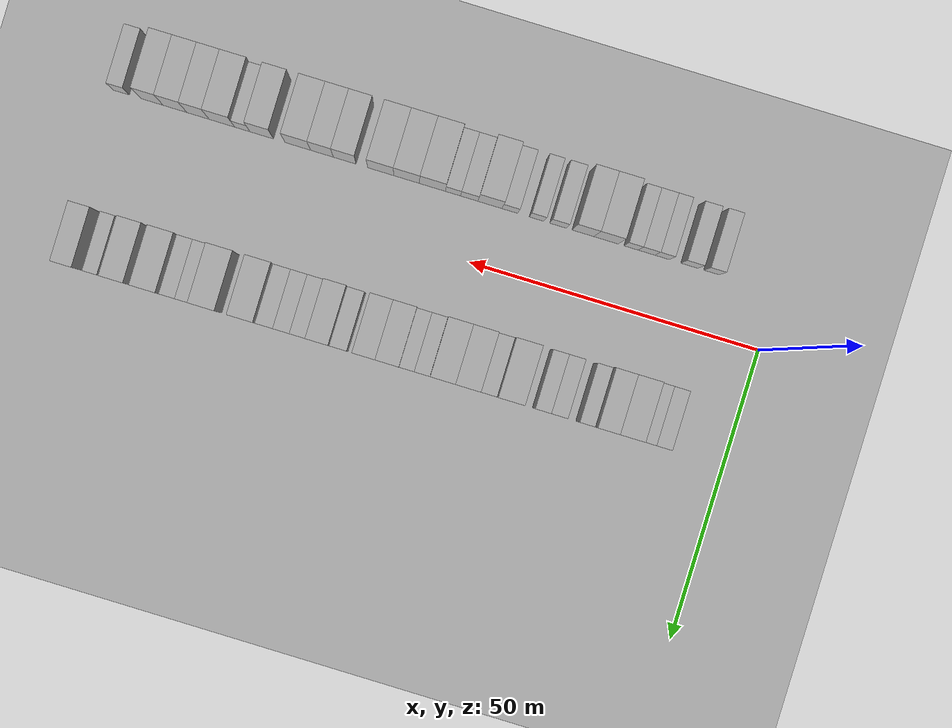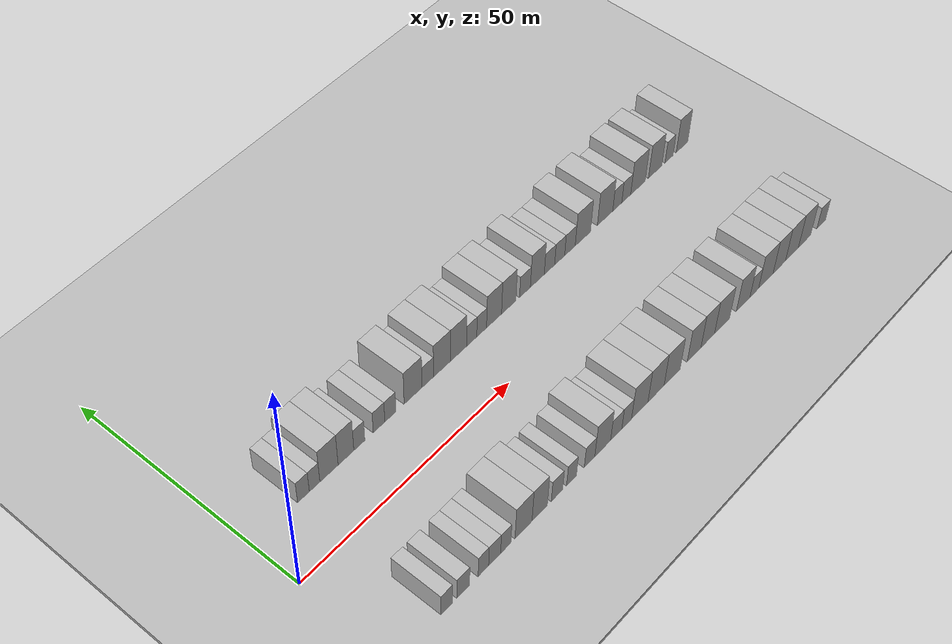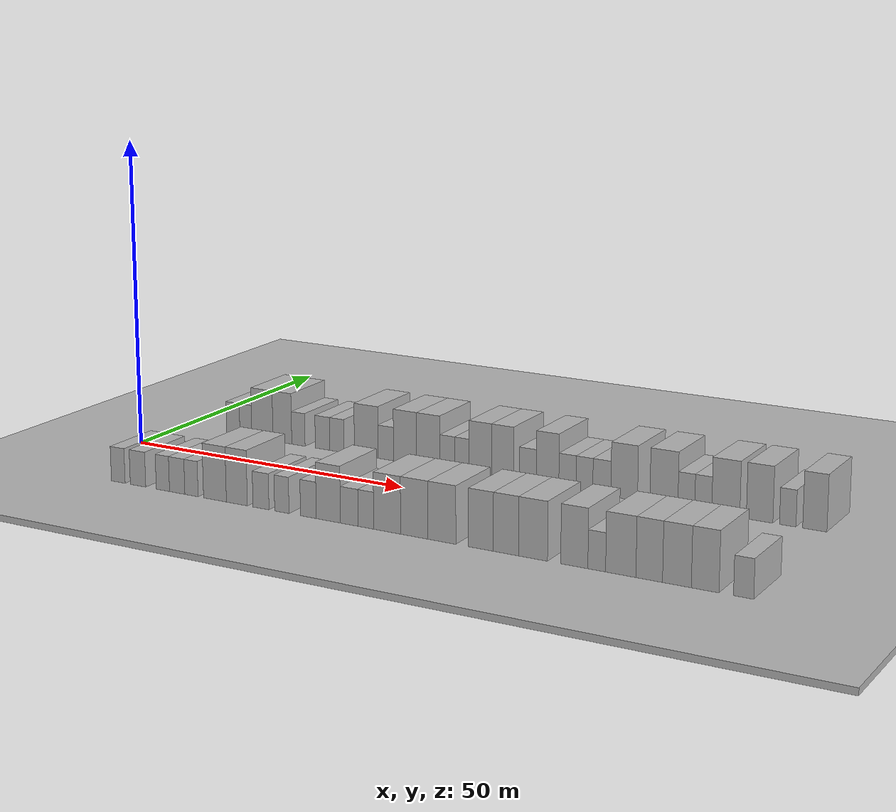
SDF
<sdf version="1.6">
 <world name="default">
  <include><name>ground_plane_1</name><uri>model://HANNAS_ground_plane</uri></include>
  <include>
   <name>ground_plane_2</name>
   <uri>model://HANNAS_ground_plane</uri>
   <pose>100 0 0  0 0 0</pose>
  </include>
  <model name="building_1">
   <static>1</static>
   <pose>11.3372 15.0000 0 0.000000 0.000000 1.570796</pose>
   <link name="link">
    <pose>0 0 3.00 0 0 0</pose>
    <collision name="collision"><geometry><box><size>10.0000 2.6744 6.0000</size></box></geometry></collision>
    <visual name="visual">
     <cast_shadows>0</cast_shadows>
     <geometry><box><size>10.0000 2.6744 6.0000</size></box></geometry>
     <material>
      <script>
       <uri>model://HANNAS_wall/materials/scripts</uri>
       <uri>model://HANNAS_wall/materials/textures</uri>
       <name>vrc/HANNAS_wall</name>
      </script>
     </material>
    </visual>
   </link>
  </model>
  <model name="building_2">
   <static>1</static>
   <pose>13.8785 15.0000 0 0.000000 0.000000 1.570796</pose>
   <link name="link">
    <pose>0 0 3.00 0 0 0</pose>
    <collision name="collision"><geometry><box><size>10.0000 2.4080 6.0000</size></box></geometry></collision>
    <visual name="visual">
     <cast_shadows>0</cast_shadows>
     <geometry><box><size>10.0000 2.4080 6.0000</size></box></geometry>
     <material>
      <script>
       <uri>model://HANNAS_wall/materials/scripts</uri>
       <uri>model://HANNAS_wall/materials/textures</uri>
       <name>vrc/HANNAS_wall</name>
      </script>
     </material>
    </visual>
   </link>
  </model>
  <model name="building_3">
   <static>1</static>
   <pose>17.1930 15.0000 0 0.000000 0.000000 1.570796</pose>
   <link name="link">
    <pose>0 0 4.50 0 0 0</pose>
    <collision name="collision"><geometry><box><size>10.0000 4.2211 9.0000</size></box></geometry></collision>
    <visual name="visual">
     <cast_shadows>0</cast_shadows>
     <geometry><box><size>10.0000 4.2211 9.0000</size></box></geometry>
     <material>
      <script>
       <uri>model://HANNAS_wall/materials/scripts</uri>
       <uri>model://HANNAS_wall/materials/textures</uri>
       <name>vrc/HANNAS_wall</name>
      </script>
     </material>
    </visual>
   </link>
  </model>
  <model name="building_4">
   <static>1</static>
   <pose>21.1514 15.0000 0 0.000000 0.000000 1.570796</pose>
   <link name="link">
    <pose>0 0 4.50 0 0 0</pose>
    <collision name="collision"><geometry><box><size>10.0000 3.6958 9.0000</size></box></geometry></collision>
    <visual name="visual">
     <cast_shadows>0</cast_shadows>
     <geometry><box><size>10.0000 3.6958 9.0000</size></box></geometry>
     <material>
      <script>
       <uri>model://HANNAS_wall/materials/scripts</uri>
       <uri>model://HANNAS_wall/materials/textures</uri>
       <name>vrc/HANNAS_wall</name>
      </script>
     </material>
    </visual>
   </link>
  </model>
  <model name="building_5">
   <static>1</static>
   <pose>24.2985 15.0000 0 0.000000 0.000000 1.570796</pose>
   <link name="link">
    <pose>0 0 3.00 0 0 0</pose>
    <collision name="collision"><geometry><box><size>10.0000 2.5983 6.0000</size></box></geometry></collision>
    <visual name="visual">
     <cast_shadows>0</cast_shadows>
     <geometry><box><size>10.0000 2.5983 6.0000</size></box></geometry>
     <material>
      <script>
       <uri>model://HANNAS_wall/materials/scripts</uri>
       <uri>model://HANNAS_wall/materials/textures</uri>
       <name>vrc/HANNAS_wall</name>
      </script>
     </material>
    </visual>
   </link>
  </model>
  <model name="building_6">
   <static>1</static>
   <pose>28.9933 15.0000 0 0.000000 0.000000 1.570796</pose>
   <link name="link">
    <pose>0 0 3.00 0 0 0</pose>
    <collision name="collision"><geometry><box><size>10.0000 2.7913 6.0000</size></box></geometry></collision>
    <visual name="visual">
     <cast_shadows>0</cast_shadows>
     <geometry><box><size>10.0000 2.7913 6.0000</size></box></geometry>
     <material>
      <script>
       <uri>model://HANNAS_wall/materials/scripts</uri>
       <uri>model://HANNAS_wall/materials/textures</uri>
       <name>vrc/HANNAS_wall</name>
      </script>
     </material>
    </visual>
   </link>
  </model>
  <model name="building_7">
   <static>1</static>
   <pose>31.7404 15.0000 0 0.000000 0.000000 1.570796</pose>
   <link name="link">
    <pose>0 0 3.00 0 0 0</pose>
    <collision name="collision"><geometry><box><size>10.0000 2.7030 6.0000</size></box></geometry></collision>
    <visual name="visual">
     <cast_shadows>0</cast_shadows>
     <geometry><box><size>10.0000 2.7030 6.0000</size></box></geometry>
     <material>
      <script>
       <uri>model://HANNAS_wall/materials/scripts</uri>
       <uri>model://HANNAS_wall/materials/textures</uri>
       <name>vrc/HANNAS_wall</name>
      </script>
     </material>
    </visual>
   </link>
  </model>
  <model name="building_8">
   <static>1</static>
   <pose>37.3140 15.0000 0 0.000000 0.000000 1.570796</pose>
   <link name="link">
    <pose>0 0 4.50 0 0 0</pose>
    <collision name="collision"><geometry><box><size>10.0000 4.4440 9.0000</size></box></geometry></collision>
    <visual name="visual">
     <cast_shadows>0</cast_shadows>
     <geometry><box><size>10.0000 4.4440 9.0000</size></box></geometry>
     <material>
      <script>
       <uri>model://HANNAS_wall/materials/scripts</uri>
       <uri>model://HANNAS_wall/materials/textures</uri>
       <name>vrc/HANNAS_wall</name>
      </script>
     </material>
    </visual>
   </link>
  </model>
  <model name="building_9">
   <static>1</static>
   <pose>40.9731 15.0000 0 0.000000 0.000000 1.570796</pose>
   <link name="link">
    <pose>0 0 3.00 0 0 0</pose>
    <collision name="collision"><geometry><box><size>10.0000 2.8742 6.0000</size></box></geometry></collision>
    <visual name="visual">
     <cast_shadows>0</cast_shadows>
     <geometry><box><size>10.0000 2.8742 6.0000</size></box></geometry>
     <material>
      <script>
       <uri>model://HANNAS_wall/materials/scripts</uri>
       <uri>model://HANNAS_wall/materials/textures</uri>
       <name>vrc/HANNAS_wall</name>
      </script>
     </material>
    </visual>
   </link>
  </model>
  <model name="building_10">
   <static>1</static>
   <pose>44.5333 15.0000 0 0.000000 0.000000 1.570796</pose>
   <link name="link">
    <pose>0 0 4.50 0 0 0</pose>
    <collision name="collision"><geometry><box><size>10.0000 4.2464 9.0000</size></box></geometry></collision>
    <visual name="visual">
     <cast_shadows>0</cast_shadows>
     <geometry><box><size>10.0000 4.2464 9.0000</size></box></geometry>
     <material>
      <script>
       <uri>model://HANNAS_wall/materials/scripts</uri>
       <uri>model://HANNAS_wall/materials/textures</uri>
       <name>vrc/HANNAS_wall</name>
      </script>
     </material>
    </visual>
   </link>
  </model>
  <model name="building_11">
   <static>1</static>
   <pose>48.7557 15.0000 0 0.000000 0.000000 1.570796</pose>
   <link name="link">
    <pose>0 0 4.50 0 0 0</pose>
    <collision name="collision"><geometry><box><size>10.0000 4.1984 9.0000</size></box></geometry></collision>
    <visual name="visual">
     <cast_shadows>0</cast_shadows>
     <geometry><box><size>10.0000 4.1984 9.0000</size></box></geometry>
     <material>
      <script>
       <uri>model://HANNAS_wall/materials/scripts</uri>
       <uri>model://HANNAS_wall/materials/textures</uri>
       <name>vrc/HANNAS_wall</name>
      </script>
     </material>
    </visual>
   </link>
  </model>
  <model name="building_12">
   <static>1</static>
   <pose>52.1893 15.0000 0 0.000000 0.000000 1.570796</pose>
   <link name="link">
    <pose>0 0 3.00 0 0 0</pose>
    <collision name="collision"><geometry><box><size>10.0000 2.6688 6.0000</size></box></geometry></collision>
    <visual name="visual">
     <cast_shadows>0</cast_shadows>
     <geometry><box><size>10.0000 2.6688 6.0000</size></box></geometry>
     <material>
      <script>
       <uri>model://HANNAS_wall/materials/scripts</uri>
       <uri>model://HANNAS_wall/materials/textures</uri>
       <name>vrc/HANNAS_wall</name>
      </script>
     </material>
    </visual>
   </link>
  </model>
  <model name="building_13">
   <static>1</static>
   <pose>54.8003 15.0000 0 0.000000 0.000000 1.570796</pose>
   <link name="link">
    <pose>0 0 3.00 0 0 0</pose>
    <collision name="collision"><geometry><box><size>10.0000 2.5532 6.0000</size></box></geometry></collision>
    <visual name="visual">
     <cast_shadows>0</cast_shadows>
     <geometry><box><size>10.0000 2.5532 6.0000</size></box></geometry>
     <material>
      <script>
       <uri>model://HANNAS_wall/materials/scripts</uri>
       <uri>model://HANNAS_wall/materials/textures</uri>
       <name>vrc/HANNAS_wall</name>
      </script>
     </material>
    </visual>
   </link>
  </model>
  <model name="building_14">
   <static>1</static>
   <pose>58.0679 15.0000 0 0.000000 0.000000 1.570796</pose>
   <link name="link">
    <pose>0 0 4.50 0 0 0</pose>
    <collision name="collision"><geometry><box><size>10.0000 3.9819 9.0000</size></box></geometry></collision>
    <visual name="visual">
     <cast_shadows>0</cast_shadows>
     <geometry><box><size>10.0000 3.9819 9.0000</size></box></geometry>
     <material>
      <script>
       <uri>model://HANNAS_wall/materials/scripts</uri>
       <uri>model://HANNAS_wall/materials/textures</uri>
       <name>vrc/HANNAS_wall</name>
      </script>
     </material>
    </visual>
   </link>
  </model>
  <model name="building_15">
   <static>1</static>
   <pose>61.9804 15.0000 0 0.000000 0.000000 1.570796</pose>
   <link name="link">
    <pose>0 0 4.50 0 0 0</pose>
    <collision name="collision"><geometry><box><size>10.0000 3.8432 9.0000</size></box></geometry></collision>
    <visual name="visual">
     <cast_shadows>0</cast_shadows>
     <geometry><box><size>10.0000 3.8432 9.0000</size></box></geometry>
     <material>
      <script>
       <uri>model://HANNAS_wall/materials/scripts</uri>
       <uri>model://HANNAS_wall/materials/textures</uri>
       <name>vrc/HANNAS_wall</name>
      </script>
     </material>
    </visual>
   </link>
  </model>
  <model name="building_16">
   <static>1</static>
   <pose>66.3748 15.0000 0 0.000000 0.000000 1.570796</pose>
   <link name="link">
    <pose>0 0 3.00 0 0 0</pose>
    <collision name="collision"><geometry><box><size>10.0000 2.9455 6.0000</size></box></geometry></collision>
    <visual name="visual">
     <cast_shadows>0</cast_shadows>
     <geometry><box><size>10.0000 2.9455 6.0000</size></box></geometry>
     <material>
      <script>
       <uri>model://HANNAS_wall/materials/scripts</uri>
       <uri>model://HANNAS_wall/materials/textures</uri>
       <name>vrc/HANNAS_wall</name>
      </script>
     </material>
    </visual>
   </link>
  </model>
  <model name="building_17">
   <static>1</static>
   <pose>69.7596 15.0000 0 0.000000 0.000000 1.570796</pose>
   <link name="link">
    <pose>0 0 4.50 0 0 0</pose>
    <collision name="collision"><geometry><box><size>10.0000 3.8243 9.0000</size></box></geometry></collision>
    <visual name="visual">
     <cast_shadows>0</cast_shadows>
     <geometry><box><size>10.0000 3.8243 9.0000</size></box></geometry>
     <material>
      <script>
       <uri>model://HANNAS_wall/materials/scripts</uri>
       <uri>model://HANNAS_wall/materials/textures</uri>
       <name>vrc/HANNAS_wall</name>
      </script>
     </material>
    </visual>
   </link>
  </model>
  <model name="building_18">
   <static>1</static>
   <pose>73.1181 15.0000 0 0.000000 0.000000 1.570796</pose>
   <link name="link">
    <pose>0 0 3.00 0 0 0</pose>
    <collision name="collision"><geometry><box><size>10.0000 2.8927 6.0000</size></box></geometry></collision>
    <visual name="visual">
     <cast_shadows>0</cast_shadows>
     <geometry><box><size>10.0000 2.8927 6.0000</size></box></geometry>
     <material>
      <script>
       <uri>model://HANNAS_wall/materials/scripts</uri>
       <uri>model://HANNAS_wall/materials/textures</uri>
       <name>vrc/HANNAS_wall</name>
      </script>
     </material>
    </visual>
   </link>
  </model>
  <model name="building_19">
   <static>1</static>
   <pose>75.9669 15.0000 0 0.000000 0.000000 1.570796</pose>
   <link name="link">
    <pose>0 0 3.00 0 0 0</pose>
    <collision name="collision"><geometry><box><size>10.0000 2.8049 6.0000</size></box></geometry></collision>
    <visual name="visual">
     <cast_shadows>0</cast_shadows>
     <geometry><box><size>10.0000 2.8049 6.0000</size></box></geometry>
     <material>
      <script>
       <uri>model://HANNAS_wall/materials/scripts</uri>
       <uri>model://HANNAS_wall/materials/textures</uri>
       <name>vrc/HANNAS_wall</name>
      </script>
     </material>
    </visual>
   </link>
  </model>
  <model name="building_20">
   <static>1</static>
   <pose>78.8637 15.0000 0 0.000000 0.000000 1.570796</pose>
   <link name="link">
    <pose>0 0 3.00 0 0 0</pose>
    <collision name="collision"><geometry><box><size>10.0000 2.9887 6.0000</size></box></geometry></collision>
    <visual name="visual">
     <cast_shadows>0</cast_shadows>
     <geometry><box><size>10.0000 2.9887 6.0000</size></box></geometry>
     <material>
      <script>
       <uri>model://HANNAS_wall/materials/scripts</uri>
       <uri>model://HANNAS_wall/materials/textures</uri>
       <name>vrc/HANNAS_wall</name>
      </script>
     </material>
    </visual>
   </link>
  </model>
  <model name="building_21">
   <static>1</static>
   <pose>82.5431 15.0000 0 0.000000 0.000000 1.570796</pose>
   <link name="link">
    <pose>0 0 4.50 0 0 0</pose>
    <collision name="collision"><geometry><box><size>10.0000 4.3702 9.0000</size></box></geometry></collision>
    <visual name="visual">
     <cast_shadows>0</cast_shadows>
     <geometry><box><size>10.0000 4.3702 9.0000</size></box></geometry>
     <material>
      <script>
       <uri>model://HANNAS_wall/materials/scripts</uri>
       <uri>model://HANNAS_wall/materials/textures</uri>
       <name>vrc/HANNAS_wall</name>
      </script>
     </material>
    </visual>
   </link>
  </model>
  <model name="building_22">
   <static>1</static>
   <pose>88.9695 15.0000 0 0.000000 0.000000 1.570796</pose>
   <link name="link">
    <pose>0 0 4.50 0 0 0</pose>
    <collision name="collision"><geometry><box><size>10.0000 4.4826 9.0000</size></box></geometry></collision>
    <visual name="visual">
     <cast_shadows>0</cast_shadows>
     <geometry><box><size>10.0000 4.4826 9.0000</size></box></geometry>
     <material>
      <script>
       <uri>model://HANNAS_wall/materials/scripts</uri>
       <uri>model://HANNAS_wall/materials/textures</uri>
       <name>vrc/HANNAS_wall</name>
      </script>
     </material>
    </visual>
   </link>
  </model>
  <model name="building_23">
   <static>1</static>
   <pose>92.5445 15.0000 0 0.000000 0.000000 1.570796</pose>
   <link name="link">
    <pose>0 0 3.00 0 0 0</pose>
    <collision name="collision"><geometry><box><size>10.0000 2.6674 6.0000</size></box></geometry></collision>
    <visual name="visual">
     <cast_shadows>0</cast_shadows>
     <geometry><box><size>10.0000 2.6674 6.0000</size></box></geometry>
     <material>
      <script>
       <uri>model://HANNAS_wall/materials/scripts</uri>
       <uri>model://HANNAS_wall/materials/textures</uri>
       <name>vrc/HANNAS_wall</name>
      </script>
     </material>
    </visual>
   </link>
  </model>
  <model name="building_24">
   <static>1</static>
   <pose>95.2123 15.0000 0 0.000000 0.000000 1.570796</pose>
   <link name="link">
    <pose>0 0 3.00 0 0 0</pose>
    <collision name="collision"><geometry><box><size>10.0000 2.6682 6.0000</size></box></geometry></collision>
    <visual name="visual">
     <cast_shadows>0</cast_shadows>
     <geometry><box><size>10.0000 2.6682 6.0000</size></box></geometry>
     <material>
      <script>
       <uri>model://HANNAS_wall/materials/scripts</uri>
       <uri>model://HANNAS_wall/materials/textures</uri>
       <name>vrc/HANNAS_wall</name>
      </script>
     </material>
    </visual>
   </link>
  </model>
  <model name="building_25">
   <static>1</static>
   <pose>98.7237 15.0000 0 0.000000 0.000000 1.570796</pose>
   <link name="link">
    <pose>0 0 4.50 0 0 0</pose>
    <collision name="collision"><geometry><box><size>10.0000 4.3547 9.0000</size></box></geometry></collision>
    <visual name="visual">
     <cast_shadows>0</cast_shadows>
     <geometry><box><size>10.0000 4.3547 9.0000</size></box></geometry>
     <material>
      <script>
       <uri>model://HANNAS_wall/materials/scripts</uri>
       <uri>model://HANNAS_wall/materials/textures</uri>
       <name>vrc/HANNAS_wall</name>
      </script>
     </material>
    </visual>
   </link>
  </model>
  <model name="building_26">
   <static>1</static>
   <pose>103.9300 15.0000 0 0.000000 0.000000 1.570796</pose>
   <link name="link">
    <pose>0 0 4.50 0 0 0</pose>
    <collision name="collision"><geometry><box><size>10.0000 4.0577 9.0000</size></box></geometry></collision>
    <visual name="visual">
     <cast_shadows>0</cast_shadows>
     <geometry><box><size>10.0000 4.0577 9.0000</size></box></geometry>
     <material>
      <script>
       <uri>model://HANNAS_wall/materials/scripts</uri>
       <uri>model://HANNAS_wall/materials/textures</uri>
       <name>vrc/HANNAS_wall</name>
      </script>
     </material>
    </visual>
   </link>
  </model>
  <model name="building_27">
   <static>1</static>
   <pose>108.2009 15.0000 0 0.000000 0.000000 1.570796</pose>
   <link name="link">
    <pose>0 0 3.00 0 0 0</pose>
    <collision name="collision"><geometry><box><size>10.0000 2.4841 6.0000</size></box></geometry></collision>
    <visual name="visual">
     <cast_shadows>0</cast_shadows>
     <geometry><box><size>10.0000 2.4841 6.0000</size></box></geometry>
     <material>
      <script>
       <uri>model://HANNAS_wall/materials/scripts</uri>
       <uri>model://HANNAS_wall/materials/textures</uri>
       <name>vrc/HANNAS_wall</name>
      </script>
     </material>
    </visual>
   </link>
  </model>
  <model name="building_28">
   <static>1</static>
   <pose>112.2435 15.0000 0 0.000000 0.000000 1.570796</pose>
   <link name="link">
    <pose>0 0 4.50 0 0 0</pose>
    <collision name="collision"><geometry><box><size>10.0000 3.6010 9.0000</size></box></geometry></collision>
    <visual name="visual">
     <cast_shadows>0</cast_shadows>
     <geometry><box><size>10.0000 3.6010 9.0000</size></box></geometry>
     <material>
      <script>
       <uri>model://HANNAS_wall/materials/scripts</uri>
       <uri>model://HANNAS_wall/materials/textures</uri>
       <name>vrc/HANNAS_wall</name>
      </script>
     </material>
    </visual>
   </link>
  </model>
  <model name="building_55">
   <static>1</static>
   <pose>11.3231 -15.0000 0 0.000000 0.000000 1.570796</pose>
   <link name="link">
    <pose>0 0 3.00 0 0 0</pose>
    <collision name="collision"><geometry><box><size>10.0000 2.6463 6.0000</size></box></geometry></collision>
    <visual name="visual">
     <cast_shadows>0</cast_shadows>
     <geometry><box><size>10.0000 2.6463 6.0000</size></box></geometry>
     <material>
      <script>
       <uri>model://HANNAS_wall/materials/scripts</uri>
       <uri>model://HANNAS_wall/materials/textures</uri>
       <name>vrc/HANNAS_wall</name>
      </script>
     </material>
    </visual>
   </link>
  </model>
  <model name="building_56">
   <static>1</static>
   <pose>15.1235 -15.0000 0 0.000000 0.000000 1.570796</pose>
   <link name="link">
    <pose>0 0 3.00 0 0 0</pose>
    <collision name="collision"><geometry><box><size>10.0000 2.9545 6.0000</size></box></geometry></collision>
    <visual name="visual">
     <cast_shadows>0</cast_shadows>
     <geometry><box><size>10.0000 2.9545 6.0000</size></box></geometry>
     <material>
      <script>
       <uri>model://HANNAS_wall/materials/scripts</uri>
       <uri>model://HANNAS_wall/materials/textures</uri>
       <name>vrc/HANNAS_wall</name>
      </script>
     </material>
    </visual>
   </link>
  </model>
  <model name="building_57">
   <static>1</static>
   <pose>19.8487 -15.0000 0 0.000000 0.000000 1.570796</pose>
   <link name="link">
    <pose>0 0 3.00 0 0 0</pose>
    <collision name="collision"><geometry><box><size>10.0000 2.4958 6.0000</size></box></geometry></collision>
    <visual name="visual">
     <cast_shadows>0</cast_shadows>
     <geometry><box><size>10.0000 2.4958 6.0000</size></box></geometry>
     <material>
      <script>
       <uri>model://HANNAS_wall/materials/scripts</uri>
       <uri>model://HANNAS_wall/materials/textures</uri>
       <name>vrc/HANNAS_wall</name>
      </script>
     </material>
    </visual>
   </link>
  </model>
  <model name="building_58">
   <static>1</static>
   <pose>22.5304 -15.0000 0 0.000000 0.000000 1.570796</pose>
   <link name="link">
    <pose>0 0 3.00 0 0 0</pose>
    <collision name="collision"><geometry><box><size>10.0000 2.8675 6.0000</size></box></geometry></collision>
    <visual name="visual">
     <cast_shadows>0</cast_shadows>
     <geometry><box><size>10.0000 2.8675 6.0000</size></box></geometry>
     <material>
      <script>
       <uri>model://HANNAS_wall/materials/scripts</uri>
       <uri>model://HANNAS_wall/materials/textures</uri>
       <name>vrc/HANNAS_wall</name>
      </script>
     </material>
    </visual>
   </link>
  </model>
  <model name="building_59">
   <static>1</static>
   <pose>25.1944 -15.0000 0 0.000000 0.000000 1.570796</pose>
   <link name="link">
    <pose>0 0 3.00 0 0 0</pose>
    <collision name="collision"><geometry><box><size>10.0000 2.4605 6.0000</size></box></geometry></collision>
    <visual name="visual">
     <cast_shadows>0</cast_shadows>
     <geometry><box><size>10.0000 2.4605 6.0000</size></box></geometry>
     <material>
      <script>
       <uri>model://HANNAS_wall/materials/scripts</uri>
       <uri>model://HANNAS_wall/materials/textures</uri>
       <name>vrc/HANNAS_wall</name>
      </script>
     </material>
    </visual>
   </link>
  </model>
  <model name="building_60">
   <static>1</static>
   <pose>29.5125 -15.0000 0 0.000000 0.000000 1.570796</pose>
   <link name="link">
    <pose>0 0 4.50 0 0 0</pose>
    <collision name="collision"><geometry><box><size>10.0000 4.1757 9.0000</size></box></geometry></collision>
    <visual name="visual">
     <cast_shadows>0</cast_shadows>
     <geometry><box><size>10.0000 4.1757 9.0000</size></box></geometry>
     <material>
      <script>
       <uri>model://HANNAS_wall/materials/scripts</uri>
       <uri>model://HANNAS_wall/materials/textures</uri>
       <name>vrc/HANNAS_wall</name>
      </script>
     </material>
    </visual>
   </link>
  </model>
  <model name="building_61">
   <static>1</static>
   <pose>33.4967 -15.0000 0 0.000000 0.000000 1.570796</pose>
   <link name="link">
    <pose>0 0 4.50 0 0 0</pose>
    <collision name="collision"><geometry><box><size>10.0000 3.7928 9.0000</size></box></geometry></collision>
    <visual name="visual">
     <cast_shadows>0</cast_shadows>
     <geometry><box><size>10.0000 3.7928 9.0000</size></box></geometry>
     <material>
      <script>
       <uri>model://HANNAS_wall/materials/scripts</uri>
       <uri>model://HANNAS_wall/materials/textures</uri>
       <name>vrc/HANNAS_wall</name>
      </script>
     </material>
    </visual>
   </link>
  </model>
  <model name="building_62">
   <static>1</static>
   <pose>37.8203 -15.0000 0 0.000000 0.000000 1.570796</pose>
   <link name="link">
    <pose>0 0 3.00 0 0 0</pose>
    <collision name="collision"><geometry><box><size>10.0000 2.8544 6.0000</size></box></geometry></collision>
    <visual name="visual">
     <cast_shadows>0</cast_shadows>
     <geometry><box><size>10.0000 2.8544 6.0000</size></box></geometry>
     <material>
      <script>
       <uri>model://HANNAS_wall/materials/scripts</uri>
       <uri>model://HANNAS_wall/materials/textures</uri>
       <name>vrc/HANNAS_wall</name>
      </script>
     </material>
    </visual>
   </link>
  </model>
  <model name="building_63">
   <static>1</static>
   <pose>41.5110 -15.0000 0 0.000000 0.000000 1.570796</pose>
   <link name="link">
    <pose>0 0 3.00 0 0 0</pose>
    <collision name="collision"><geometry><box><size>10.0000 2.5268 6.0000</size></box></geometry></collision>
    <visual name="visual">
     <cast_shadows>0</cast_shadows>
     <geometry><box><size>10.0000 2.5268 6.0000</size></box></geometry>
     <material>
      <script>
       <uri>model://HANNAS_wall/materials/scripts</uri>
       <uri>model://HANNAS_wall/materials/textures</uri>
       <name>vrc/HANNAS_wall</name>
      </script>
     </material>
    </visual>
   </link>
  </model>
  <model name="building_64">
   <static>1</static>
   <pose>46.1457 -15.0000 0 0.000000 0.000000 1.570796</pose>
   <link name="link">
    <pose>0 0 3.00 0 0 0</pose>
    <collision name="collision"><geometry><box><size>10.0000 2.7426 6.0000</size></box></geometry></collision>
    <visual name="visual">
     <cast_shadows>0</cast_shadows>
     <geometry><box><size>10.0000 2.7426 6.0000</size></box></geometry>
     <material>
      <script>
       <uri>model://HANNAS_wall/materials/scripts</uri>
       <uri>model://HANNAS_wall/materials/textures</uri>
       <name>vrc/HANNAS_wall</name>
      </script>
     </material>
    </visual>
   </link>
  </model>
  <model name="building_65">
   <static>1</static>
   <pose>49.5882 -15.0000 0 0.000000 0.000000 1.570796</pose>
   <link name="link">
    <pose>0 0 4.50 0 0 0</pose>
    <collision name="collision"><geometry><box><size>10.0000 4.1423 9.0000</size></box></geometry></collision>
    <visual name="visual">
     <cast_shadows>0</cast_shadows>
     <geometry><box><size>10.0000 4.1423 9.0000</size></box></geometry>
     <material>
      <script>
       <uri>model://HANNAS_wall/materials/scripts</uri>
       <uri>model://HANNAS_wall/materials/textures</uri>
       <name>vrc/HANNAS_wall</name>
      </script>
     </material>
    </visual>
   </link>
  </model>
  <model name="building_66">
   <static>1</static>
   <pose>53.1500 -15.0000 0 0.000000 0.000000 1.570796</pose>
   <link name="link">
    <pose>0 0 3.00 0 0 0</pose>
    <collision name="collision"><geometry><box><size>10.0000 2.9813 6.0000</size></box></geometry></collision>
    <visual name="visual">
     <cast_shadows>0</cast_shadows>
     <geometry><box><size>10.0000 2.9813 6.0000</size></box></geometry>
     <material>
      <script>
       <uri>model://HANNAS_wall/materials/scripts</uri>
       <uri>model://HANNAS_wall/materials/textures</uri>
       <name>vrc/HANNAS_wall</name>
      </script>
     </material>
    </visual>
   </link>
  </model>
  <model name="building_67">
   <static>1</static>
   <pose>55.9500 -15.0000 0 0.000000 0.000000 1.570796</pose>
   <link name="link">
    <pose>0 0 3.00 0 0 0</pose>
    <collision name="collision"><geometry><box><size>10.0000 2.6187 6.0000</size></box></geometry></collision>
    <visual name="visual">
     <cast_shadows>0</cast_shadows>
     <geometry><box><size>10.0000 2.6187 6.0000</size></box></geometry>
     <material>
      <script>
       <uri>model://HANNAS_wall/materials/scripts</uri>
       <uri>model://HANNAS_wall/materials/textures</uri>
       <name>vrc/HANNAS_wall</name>
      </script>
     </material>
    </visual>
   </link>
  </model>
  <model name="building_68">
   <static>1</static>
   <pose>59.4896 -15.0000 0 0.000000 0.000000 1.570796</pose>
   <link name="link">
    <pose>0 0 4.50 0 0 0</pose>
    <collision name="collision"><geometry><box><size>10.0000 4.4603 9.0000</size></box></geometry></collision>
    <visual name="visual">
     <cast_shadows>0</cast_shadows>
     <geometry><box><size>10.0000 4.4603 9.0000</size></box></geometry>
     <material>
      <script>
       <uri>model://HANNAS_wall/materials/scripts</uri>
       <uri>model://HANNAS_wall/materials/textures</uri>
       <name>vrc/HANNAS_wall</name>
      </script>
     </material>
    </visual>
   </link>
  </model>
  <model name="building_69">
   <static>1</static>
   <pose>63.9404 -15.0000 0 0.000000 0.000000 1.570796</pose>
   <link name="link">
    <pose>0 0 4.50 0 0 0</pose>
    <collision name="collision"><geometry><box><size>10.0000 4.4414 9.0000</size></box></geometry></collision>
    <visual name="visual">
     <cast_shadows>0</cast_shadows>
     <geometry><box><size>10.0000 4.4414 9.0000</size></box></geometry>
     <material>
      <script>
       <uri>model://HANNAS_wall/materials/scripts</uri>
       <uri>model://HANNAS_wall/materials/textures</uri>
       <name>vrc/HANNAS_wall</name>
      </script>
     </material>
    </visual>
   </link>
  </model>
  <model name="building_70">
   <static>1</static>
   <pose>68.4097 -15.0000 0 0.000000 0.000000 1.570796</pose>
   <link name="link">
    <pose>0 0 4.50 0 0 0</pose>
    <collision name="collision"><geometry><box><size>10.0000 4.4972 9.0000</size></box></geometry></collision>
    <visual name="visual">
     <cast_shadows>0</cast_shadows>
     <geometry><box><size>10.0000 4.4972 9.0000</size></box></geometry>
     <material>
      <script>
       <uri>model://HANNAS_wall/materials/scripts</uri>
       <uri>model://HANNAS_wall/materials/textures</uri>
       <name>vrc/HANNAS_wall</name>
      </script>
     </material>
    </visual>
   </link>
  </model>
  <model name="building_71">
   <static>1</static>
   <pose>74.6182 -15.0000 0 0.000000 0.000000 1.570796</pose>
   <link name="link">
    <pose>0 0 4.50 0 0 0</pose>
    <collision name="collision"><geometry><box><size>10.0000 3.9198 9.0000</size></box></geometry></collision>
    <visual name="visual">
     <cast_shadows>0</cast_shadows>
     <geometry><box><size>10.0000 3.9198 9.0000</size></box></geometry>
     <material>
      <script>
       <uri>model://HANNAS_wall/materials/scripts</uri>
       <uri>model://HANNAS_wall/materials/textures</uri>
       <name>vrc/HANNAS_wall</name>
      </script>
     </material>
    </visual>
   </link>
  </model>
  <model name="building_72">
   <static>1</static>
   <pose>78.5404 -15.0000 0 0.000000 0.000000 1.570796</pose>
   <link name="link">
    <pose>0 0 4.50 0 0 0</pose>
    <collision name="collision"><geometry><box><size>10.0000 3.9246 9.0000</size></box></geometry></collision>
    <visual name="visual">
     <cast_shadows>0</cast_shadows>
     <geometry><box><size>10.0000 3.9246 9.0000</size></box></geometry>
     <material>
      <script>
       <uri>model://HANNAS_wall/materials/scripts</uri>
       <uri>model://HANNAS_wall/materials/textures</uri>
       <name>vrc/HANNAS_wall</name>
      </script>
     </material>
    </visual>
   </link>
  </model>
  <model name="building_73">
   <static>1</static>
   <pose>82.7111 -15.0000 0 0.000000 0.000000 1.570796</pose>
   <link name="link">
    <pose>0 0 4.50 0 0 0</pose>
    <collision name="collision"><geometry><box><size>10.0000 4.4168 9.0000</size></box></geometry></collision>
    <visual name="visual">
     <cast_shadows>0</cast_shadows>
     <geometry><box><size>10.0000 4.4168 9.0000</size></box></geometry>
     <material>
      <script>
       <uri>model://HANNAS_wall/materials/scripts</uri>
       <uri>model://HANNAS_wall/materials/textures</uri>
       <name>vrc/HANNAS_wall</name>
      </script>
     </material>
    </visual>
   </link>
  </model>
  <model name="building_74">
   <static>1</static>
   <pose>88.9491 -15.0000 0 0.000000 0.000000 1.570796</pose>
   <link name="link">
    <pose>0 0 4.50 0 0 0</pose>
    <collision name="collision"><geometry><box><size>10.0000 4.0591 9.0000</size></box></geometry></collision>
    <visual name="visual">
     <cast_shadows>0</cast_shadows>
     <geometry><box><size>10.0000 4.0591 9.0000</size></box></geometry>
     <material>
      <script>
       <uri>model://HANNAS_wall/materials/scripts</uri>
       <uri>model://HANNAS_wall/materials/textures</uri>
       <name>vrc/HANNAS_wall</name>
      </script>
     </material>
    </visual>
   </link>
  </model>
  <model name="building_75">
   <static>1</static>
   <pose>92.2917 -15.0000 0 0.000000 0.000000 1.570796</pose>
   <link name="link">
    <pose>0 0 3.00 0 0 0</pose>
    <collision name="collision"><geometry><box><size>10.0000 2.6261 6.0000</size></box></geometry></collision>
    <visual name="visual">
     <cast_shadows>0</cast_shadows>
     <geometry><box><size>10.0000 2.6261 6.0000</size></box></geometry>
     <material>
      <script>
       <uri>model://HANNAS_wall/materials/scripts</uri>
       <uri>model://HANNAS_wall/materials/textures</uri>
       <name>vrc/HANNAS_wall</name>
      </script>
     </material>
    </visual>
   </link>
  </model>
  <model name="building_76">
   <static>1</static>
   <pose>95.8149 -15.0000 0 0.000000 0.000000 1.570796</pose>
   <link name="link">
    <pose>0 0 4.50 0 0 0</pose>
    <collision name="collision"><geometry><box><size>10.0000 4.4203 9.0000</size></box></geometry></collision>
    <visual name="visual">
     <cast_shadows>0</cast_shadows>
     <geometry><box><size>10.0000 4.4203 9.0000</size></box></geometry>
     <material>
      <script>
       <uri>model://HANNAS_wall/materials/scripts</uri>
       <uri>model://HANNAS_wall/materials/textures</uri>
       <name>vrc/HANNAS_wall</name>
      </script>
     </material>
    </visual>
   </link>
  </model>
  <model name="building_77">
   <static>1</static>
   <pose>99.9389 -15.0000 0 0.000000 0.000000 1.570796</pose>
   <link name="link">
    <pose>0 0 4.50 0 0 0</pose>
    <collision name="collision"><geometry><box><size>10.0000 3.8276 9.0000</size></box></geometry></collision>
    <visual name="visual">
     <cast_shadows>0</cast_shadows>
     <geometry><box><size>10.0000 3.8276 9.0000</size></box></geometry>
     <material>
      <script>
       <uri>model://HANNAS_wall/materials/scripts</uri>
       <uri>model://HANNAS_wall/materials/textures</uri>
       <name>vrc/HANNAS_wall</name>
      </script>
     </material>
    </visual>
   </link>
  </model>
  <model name="building_78">
   <static>1</static>
   <pose>103.8941 -15.0000 0 0.000000 0.000000 1.570796</pose>
   <link name="link">
    <pose>0 0 4.50 0 0 0</pose>
    <collision name="collision"><geometry><box><size>10.0000 4.0828 9.0000</size></box></geometry></collision>
    <visual name="visual">
     <cast_shadows>0</cast_shadows>
     <geometry><box><size>10.0000 4.0828 9.0000</size></box></geometry>
     <material>
      <script>
       <uri>model://HANNAS_wall/materials/scripts</uri>
       <uri>model://HANNAS_wall/materials/textures</uri>
       <name>vrc/HANNAS_wall</name>
      </script>
     </material>
    </visual>
   </link>
  </model>
  <model name="building_79">
   <static>1</static>
   <pose>107.8738 -15.0000 0 0.000000 0.000000 1.570796</pose>
   <link name="link">
    <pose>0 0 4.50 0 0 0</pose>
    <collision name="collision"><geometry><box><size>10.0000 3.8766 9.0000</size></box></geometry></collision>
    <visual name="visual">
     <cast_shadows>0</cast_shadows>
     <geometry><box><size>10.0000 3.8766 9.0000</size></box></geometry>
     <material>
      <script>
       <uri>model://HANNAS_wall/materials/scripts</uri>
       <uri>model://HANNAS_wall/materials/textures</uri>
       <name>vrc/HANNAS_wall</name>
      </script>
     </material>
    </visual>
   </link>
  </model>
  <model name="building_80">
   <static>1</static>
   <pose>113.2005 -15.0000 0 0.000000 0.000000 1.570796</pose>
   <link name="link">
    <pose>0 0 3.00 0 0 0</pose>
    <collision name="collision"><geometry><box><size>10.0000 2.7768 6.0000</size></box></geometry></collision>
    <visual name="visual">
     <cast_shadows>0</cast_shadows>
     <geometry><box><size>10.0000 2.7768 6.0000</size></box></geometry>
     <material>
      <script>
       <uri>model://HANNAS_wall/materials/scripts</uri>
       <uri>model://HANNAS_wall/materials/textures</uri>
       <name>vrc/HANNAS_wall</name>
      </script>
     </material>
    </visual>
   </link>
  </model>
 </world>
</sdf>
